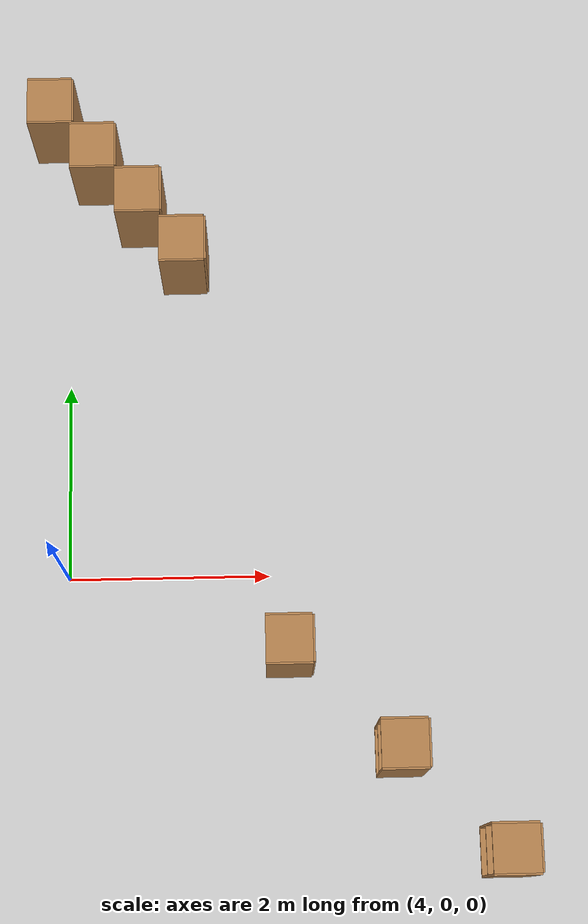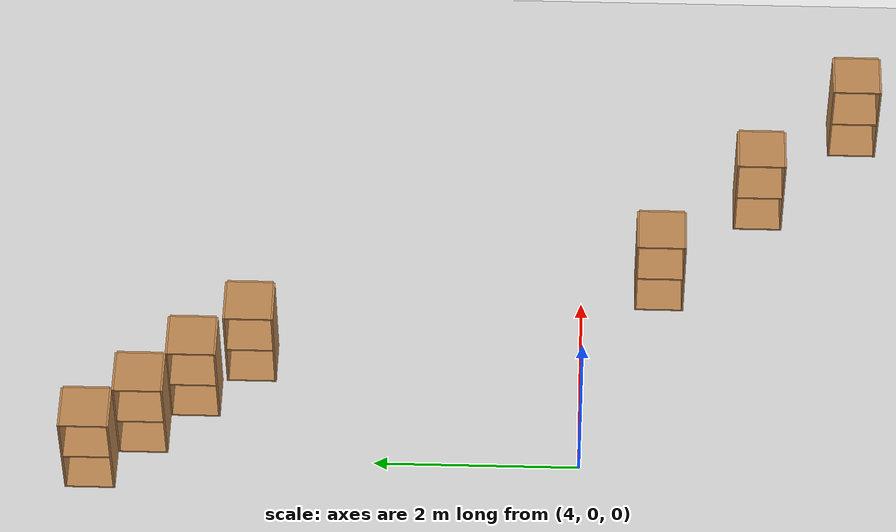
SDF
<sdf version="1.6">
 <world name="default">
  <model name="ground_plane">
   <static>1</static>
   <link name="link">
    <collision name="collision">
     <geometry><plane><normal>0 0 1</normal><size>100 100</size></plane></geometry>
     <surface><friction><ode><mu>100</mu><mu2>50</mu2></ode></friction></surface>
    </collision>
    <visual name="visual">
     <cast_shadows>0</cast_shadows>
     <geometry><plane><normal>0 0 1</normal><size>100 100</size></plane></geometry>
     <material>
      <script><uri>file://media/materials/scripts/gazebo.material</uri><name>Gazebo/Grey</name></script>
     </material>
    </visual>
   </link>
  </model>
  <model name="cabinet">
   <static>1</static>
   <link name="cabinet_bottom_plate">
    <inertial>
     <pose>0 0 -1 0 -0 0</pose>
     <inertia><ixx>2.05</ixx><ixy>0</ixy><ixz>0</ixz><iyy>2.05</iyy><iyz>0</iyz><izz>2.05</izz></inertia>
     <mass>25</mass>
    </inertial>
    <collision name="cabinet_bottom_plate_geom">
     <pose>0 0 0.01 0 -0 0</pose>
     <geometry><box><size>0.45 0.45 0.02</size></box></geometry>
    </collision>
    <visual name="cabinet_bottom_plate_geom_visual">
     <pose>0 0 0.01 0 -0 0</pose>
     <geometry><box><size>0.45 0.45 0.02</size></box></geometry>
     <material>
      <script><uri>file://media/materials/scripts/gazebo.material</uri><name>Gazebo/Wood</name></script>
     </material>
    </visual>
    <collision name="cabinet_bottom_plate_geom_cabinet_back_plate">
     <pose>0.235 0 0.51 0 -0 0</pose>
     <geometry><box><size>0.02 0.45 1.02</size></box></geometry>
    </collision>
    <visual name="cabinet_bottom_plate_geom_cabinet_back_plate_visual">
     <pose>0.235 0 0.51 0 -0 0</pose>
     <geometry><box><size>0.02 0.45 1.02</size></box></geometry>
     <material>
      <script><uri>file://media/materials/scripts/gazebo.material</uri><name>Gazebo/Wood</name></script>
     </material>
    </visual>
    <collision name="cabinet_bottom_plate_geom_cabinet_left_plate">
     <pose>0 0.235 0.51 0 -0 0</pose>
     <geometry><box><size>0.45 0.02 1.02</size></box></geometry>
    </collision>
    <visual name="cabinet_bottom_plate_geom_cabinet_left_plate_visual">
     <pose>0 0.235 0.51 0 -0 0</pose>
     <geometry><box><size>0.45 0.02 1.02</size></box></geometry>
     <material>
      <script><uri>file://media/materials/scripts/gazebo.material</uri><name>Gazebo/Wood</name></script>
     </material>
    </visual>
    <collision name="cabinet_bottom_plate_geom_cabinet_middle_plate">
     <pose>0 0 0.51 0 -0 0</pose>
     <geometry><box><size>0.45 0.45 0.02</size></box></geometry>
    </collision>
    <visual name="cabinet_bottom_plate_geom_cabinet_middle_plate_visual">
     <pose>0 0 0.51 0 -0 0</pose>
     <geometry><box><size>0.45 0.45 0.02</size></box></geometry>
     <material>
      <script><uri>file://media/materials/scripts/gazebo.material</uri><name>Gazebo/Wood</name></script>
     </material>
    </visual>
    <collision name="cabinet_bottom_plate_geom_cabinet_right_plate">
     <pose>0 -0.235 0.51 0 -0 0</pose>
     <geometry><box><size>0.45 0.02 1.02</size></box></geometry>
    </collision>
    <visual name="cabinet_bottom_plate_geom_cabinet_right_plate_visual">
     <pose>0 -0.235 0.51 0 -0 0</pose>
     <geometry><box><size>0.45 0.02 1.02</size></box></geometry>
     <material>
      <script><uri>file://media/materials/scripts/gazebo.material</uri><name>Gazebo/Wood</name></script>
     </material>
    </visual>
    <collision name="cabinet_bottom_plate_geom_cabinet_top_plate">
     <pose>0 0 1.01 0 -0 0</pose>
     <geometry><box><size>0.45 0.45 0.02</size></box></geometry>
    </collision>
    <visual name="cabinet_bottom_plate_geom_cabinet_top_plate_visual">
     <pose>0 0 1.01 0 -0 0</pose>
     <geometry><box><size>0.45 0.45 0.02</size></box></geometry>
     <material>
      <script><uri>file://media/materials/scripts/gazebo.material</uri><name>Gazebo/Wood</name></script>
     </material>
    </visual>
   </link>
   <pose>5.18774 3.25027 0 0 -0 0</pose>
  </model>
  <model name="cabinet_0">
   <static>1</static>
   <link name="cabinet_bottom_plate">
    <inertial>
     <pose>0 0 -1 0 -0 0</pose>
     <inertia><ixx>2.05</ixx><ixy>0</ixy><ixz>0</ixz><iyy>2.05</iyy><iyz>0</iyz><izz>2.05</izz></inertia>
     <mass>25</mass>
    </inertial>
    <collision name="cabinet_bottom_plate_geom">
     <pose>0 0 0.01 0 -0 0</pose>
     <geometry><box><size>0.45 0.45 0.02</size></box></geometry>
    </collision>
    <visual name="cabinet_bottom_plate_geom_visual">
     <pose>0 0 0.01 0 -0 0</pose>
     <geometry><box><size>0.45 0.45 0.02</size></box></geometry>
     <material>
      <script><uri>file://media/materials/scripts/gazebo.material</uri><name>Gazebo/Wood</name></script>
     </material>
    </visual>
    <collision name="cabinet_bottom_plate_geom_cabinet_back_plate">
     <pose>0.235 0 0.51 0 -0 0</pose>
     <geometry><box><size>0.02 0.45 1.02</size></box></geometry>
    </collision>
    <visual name="cabinet_bottom_plate_geom_cabinet_back_plate_visual">
     <pose>0.235 0 0.51 0 -0 0</pose>
     <geometry><box><size>0.02 0.45 1.02</size></box></geometry>
     <material>
      <script><uri>file://media/materials/scripts/gazebo.material</uri><name>Gazebo/Wood</name></script>
     </material>
    </visual>
    <collision name="cabinet_bottom_plate_geom_cabinet_left_plate">
     <pose>0 0.235 0.51 0 -0 0</pose>
     <geometry><box><size>0.45 0.02 1.02</size></box></geometry>
    </collision>
    <visual name="cabinet_bottom_plate_geom_cabinet_left_plate_visual">
     <pose>0 0.235 0.51 0 -0 0</pose>
     <geometry><box><size>0.45 0.02 1.02</size></box></geometry>
     <material>
      <script><uri>file://media/materials/scripts/gazebo.material</uri><name>Gazebo/Wood</name></script>
     </material>
    </visual>
    <collision name="cabinet_bottom_plate_geom_cabinet_middle_plate">
     <pose>0 0 0.51 0 -0 0</pose>
     <geometry><box><size>0.45 0.45 0.02</size></box></geometry>
    </collision>
    <visual name="cabinet_bottom_plate_geom_cabinet_middle_plate_visual">
     <pose>0 0 0.51 0 -0 0</pose>
     <geometry><box><size>0.45 0.45 0.02</size></box></geometry>
     <material>
      <script><uri>file://media/materials/scripts/gazebo.material</uri><name>Gazebo/Wood</name></script>
     </material>
    </visual>
    <collision name="cabinet_bottom_plate_geom_cabinet_right_plate">
     <pose>0 -0.235 0.51 0 -0 0</pose>
     <geometry><box><size>0.45 0.02 1.02</size></box></geometry>
    </collision>
    <visual name="cabinet_bottom_plate_geom_cabinet_right_plate_visual">
     <pose>0 -0.235 0.51 0 -0 0</pose>
     <geometry><box><size>0.45 0.02 1.02</size></box></geometry>
     <material>
      <script><uri>file://media/materials/scripts/gazebo.material</uri><name>Gazebo/Wood</name></script>
     </material>
    </visual>
    <collision name="cabinet_bottom_plate_geom_cabinet_top_plate">
     <pose>0 0 1.01 0 -0 0</pose>
     <geometry><box><size>0.45 0.45 0.02</size></box></geometry>
    </collision>
    <visual name="cabinet_bottom_plate_geom_cabinet_top_plate_visual">
     <pose>0 0 1.01 0 -0 0</pose>
     <geometry><box><size>0.45 0.45 0.02</size></box></geometry>
     <material>
      <script><uri>file://media/materials/scripts/gazebo.material</uri><name>Gazebo/Wood</name></script>
     </material>
    </visual>
   </link>
   <pose>4.74891 3.77928 0 0 -0 0</pose>
  </model>
  <model name="cabinet_1">
   <static>1</static>
   <link name="cabinet_bottom_plate">
    <inertial>
     <pose>0 0 -1 0 -0 0</pose>
     <inertia><ixx>2.05</ixx><ixy>0</ixy><ixz>0</ixz><iyy>2.05</iyy><iyz>0</iyz><izz>2.05</izz></inertia>
     <mass>25</mass>
    </inertial>
    <collision name="cabinet_bottom_plate_geom">
     <pose>0 0 0.01 0 -0 0</pose>
     <geometry><box><size>0.45 0.45 0.02</size></box></geometry>
    </collision>
    <visual name="cabinet_bottom_plate_geom_visual">
     <pose>0 0 0.01 0 -0 0</pose>
     <geometry><box><size>0.45 0.45 0.02</size></box></geometry>
     <material>
      <script><uri>file://media/materials/scripts/gazebo.material</uri><name>Gazebo/Wood</name></script>
     </material>
    </visual>
    <collision name="cabinet_bottom_plate_geom_cabinet_back_plate">
     <pose>0.235 0 0.51 0 -0 0</pose>
     <geometry><box><size>0.02 0.45 1.02</size></box></geometry>
    </collision>
    <visual name="cabinet_bottom_plate_geom_cabinet_back_plate_visual">
     <pose>0.235 0 0.51 0 -0 0</pose>
     <geometry><box><size>0.02 0.45 1.02</size></box></geometry>
     <material>
      <script><uri>file://media/materials/scripts/gazebo.material</uri><name>Gazebo/Wood</name></script>
     </material>
    </visual>
    <collision name="cabinet_bottom_plate_geom_cabinet_left_plate">
     <pose>0 0.235 0.51 0 -0 0</pose>
     <geometry><box><size>0.45 0.02 1.02</size></box></geometry>
    </collision>
    <visual name="cabinet_bottom_plate_geom_cabinet_left_plate_visual">
     <pose>0 0.235 0.51 0 -0 0</pose>
     <geometry><box><size>0.45 0.02 1.02</size></box></geometry>
     <material>
      <script><uri>file://media/materials/scripts/gazebo.material</uri><name>Gazebo/Wood</name></script>
     </material>
    </visual>
    <collision name="cabinet_bottom_plate_geom_cabinet_middle_plate">
     <pose>0 0 0.51 0 -0 0</pose>
     <geometry><box><size>0.45 0.45 0.02</size></box></geometry>
    </collision>
    <visual name="cabinet_bottom_plate_geom_cabinet_middle_plate_visual">
     <pose>0 0 0.51 0 -0 0</pose>
     <geometry><box><size>0.45 0.45 0.02</size></box></geometry>
     <material>
      <script><uri>file://media/materials/scripts/gazebo.material</uri><name>Gazebo/Wood</name></script>
     </material>
    </visual>
    <collision name="cabinet_bottom_plate_geom_cabinet_right_plate">
     <pose>0 -0.235 0.51 0 -0 0</pose>
     <geometry><box><size>0.45 0.02 1.02</size></box></geometry>
    </collision>
    <visual name="cabinet_bottom_plate_geom_cabinet_right_plate_visual">
     <pose>0 -0.235 0.51 0 -0 0</pose>
     <geometry><box><size>0.45 0.02 1.02</size></box></geometry>
     <material>
      <script><uri>file://media/materials/scripts/gazebo.material</uri><name>Gazebo/Wood</name></script>
     </material>
    </visual>
    <collision name="cabinet_bottom_plate_geom_cabinet_top_plate">
     <pose>0 0 1.01 0 -0 0</pose>
     <geometry><box><size>0.45 0.45 0.02</size></box></geometry>
    </collision>
    <visual name="cabinet_bottom_plate_geom_cabinet_top_plate_visual">
     <pose>0 0 1.01 0 -0 0</pose>
     <geometry><box><size>0.45 0.45 0.02</size></box></geometry>
     <material>
      <script><uri>file://media/materials/scripts/gazebo.material</uri><name>Gazebo/Wood</name></script>
     </material>
    </visual>
   </link>
   <pose>4.2975 4.26155 0 0 -0 0</pose>
  </model>
  <model name="cabinet_2">
   <static>1</static>
   <link name="cabinet_bottom_plate">
    <inertial>
     <pose>0 0 -1 0 -0 0</pose>
     <inertia><ixx>2.05</ixx><ixy>0</ixy><ixz>0</ixz><iyy>2.05</iyy><iyz>0</iyz><izz>2.05</izz></inertia>
     <mass>25</mass>
    </inertial>
    <collision name="cabinet_bottom_plate_geom">
     <pose>0 0 0.01 0 -0 0</pose>
     <geometry><box><size>0.45 0.45 0.02</size></box></geometry>
    </collision>
    <visual name="cabinet_bottom_plate_geom_visual">
     <pose>0 0 0.01 0 -0 0</pose>
     <geometry><box><size>0.45 0.45 0.02</size></box></geometry>
     <material>
      <script><uri>file://media/materials/scripts/gazebo.material</uri><name>Gazebo/Wood</name></script>
     </material>
    </visual>
    <collision name="cabinet_bottom_plate_geom_cabinet_back_plate">
     <pose>0.235 0 0.51 0 -0 0</pose>
     <geometry><box><size>0.02 0.45 1.02</size></box></geometry>
    </collision>
    <visual name="cabinet_bottom_plate_geom_cabinet_back_plate_visual">
     <pose>0.235 0 0.51 0 -0 0</pose>
     <geometry><box><size>0.02 0.45 1.02</size></box></geometry>
     <material>
      <script><uri>file://media/materials/scripts/gazebo.material</uri><name>Gazebo/Wood</name></script>
     </material>
    </visual>
    <collision name="cabinet_bottom_plate_geom_cabinet_left_plate">
     <pose>0 0.235 0.51 0 -0 0</pose>
     <geometry><box><size>0.45 0.02 1.02</size></box></geometry>
    </collision>
    <visual name="cabinet_bottom_plate_geom_cabinet_left_plate_visual">
     <pose>0 0.235 0.51 0 -0 0</pose>
     <geometry><box><size>0.45 0.02 1.02</size></box></geometry>
     <material>
      <script><uri>file://media/materials/scripts/gazebo.material</uri><name>Gazebo/Wood</name></script>
     </material>
    </visual>
    <collision name="cabinet_bottom_plate_geom_cabinet_middle_plate">
     <pose>0 0 0.51 0 -0 0</pose>
     <geometry><box><size>0.45 0.45 0.02</size></box></geometry>
    </collision>
    <visual name="cabinet_bottom_plate_geom_cabinet_middle_plate_visual">
     <pose>0 0 0.51 0 -0 0</pose>
     <geometry><box><size>0.45 0.45 0.02</size></box></geometry>
     <material>
      <script><uri>file://media/materials/scripts/gazebo.material</uri><name>Gazebo/Wood</name></script>
     </material>
    </visual>
    <collision name="cabinet_bottom_plate_geom_cabinet_right_plate">
     <pose>0 -0.235 0.51 0 -0 0</pose>
     <geometry><box><size>0.45 0.02 1.02</size></box></geometry>
    </collision>
    <visual name="cabinet_bottom_plate_geom_cabinet_right_plate_visual">
     <pose>0 -0.235 0.51 0 -0 0</pose>
     <geometry><box><size>0.45 0.02 1.02</size></box></geometry>
     <material>
      <script><uri>file://media/materials/scripts/gazebo.material</uri><name>Gazebo/Wood</name></script>
     </material>
    </visual>
    <collision name="cabinet_bottom_plate_geom_cabinet_top_plate">
     <pose>0 0 1.01 0 -0 0</pose>
     <geometry><box><size>0.45 0.45 0.02</size></box></geometry>
    </collision>
    <visual name="cabinet_bottom_plate_geom_cabinet_top_plate_visual">
     <pose>0 0 1.01 0 -0 0</pose>
     <geometry><box><size>0.45 0.45 0.02</size></box></geometry>
     <material>
      <script><uri>file://media/materials/scripts/gazebo.material</uri><name>Gazebo/Wood</name></script>
     </material>
    </visual>
   </link>
   <pose>3.8673 4.74815 0 0 -0 0</pose>
  </model>
  <model name="cabinet_6">
   <static>1</static>
   <link name="cabinet_bottom_plate">
    <inertial>
     <pose>0 0 -1 0 -0 0</pose>
     <inertia><ixx>2.05</ixx><ixy>0</ixy><ixz>0</ixz><iyy>2.05</iyy><iyz>0</iyz><izz>2.05</izz></inertia>
     <mass>25</mass>
    </inertial>
    <collision name="cabinet_bottom_plate_geom">
     <pose>0 0 0.01 0 -0 0</pose>
     <geometry><box><size>0.45 0.45 0.02</size></box></geometry>
    </collision>
    <visual name="cabinet_bottom_plate_geom_visual">
     <pose>0 0 0.01 0 -0 0</pose>
     <geometry><box><size>0.45 0.45 0.02</size></box></geometry>
     <material>
      <script><uri>file://media/materials/scripts/gazebo.material</uri><name>Gazebo/Wood</name></script>
     </material>
    </visual>
    <collision name="cabinet_bottom_plate_geom_cabinet_back_plate">
     <pose>0.235 0 0.51 0 -0 0</pose>
     <geometry><box><size>0.02 0.45 1.02</size></box></geometry>
    </collision>
    <visual name="cabinet_bottom_plate_geom_cabinet_back_plate_visual">
     <pose>0.235 0 0.51 0 -0 0</pose>
     <geometry><box><size>0.02 0.45 1.02</size></box></geometry>
     <material>
      <script><uri>file://media/materials/scripts/gazebo.material</uri><name>Gazebo/Wood</name></script>
     </material>
    </visual>
    <collision name="cabinet_bottom_plate_geom_cabinet_left_plate">
     <pose>0 0.235 0.51 0 -0 0</pose>
     <geometry><box><size>0.45 0.02 1.02</size></box></geometry>
    </collision>
    <visual name="cabinet_bottom_plate_geom_cabinet_left_plate_visual">
     <pose>0 0.235 0.51 0 -0 0</pose>
     <geometry><box><size>0.45 0.02 1.02</size></box></geometry>
     <material>
      <script><uri>file://media/materials/scripts/gazebo.material</uri><name>Gazebo/Wood</name></script>
     </material>
    </visual>
    <collision name="cabinet_bottom_plate_geom_cabinet_middle_plate">
     <pose>0 0 0.51 0 -0 0</pose>
     <geometry><box><size>0.45 0.45 0.02</size></box></geometry>
    </collision>
    <visual name="cabinet_bottom_plate_geom_cabinet_middle_plate_visual">
     <pose>0 0 0.51 0 -0 0</pose>
     <geometry><box><size>0.45 0.45 0.02</size></box></geometry>
     <material>
      <script><uri>file://media/materials/scripts/gazebo.material</uri><name>Gazebo/Wood</name></script>
     </material>
    </visual>
    <collision name="cabinet_bottom_plate_geom_cabinet_right_plate">
     <pose>0 -0.235 0.51 0 -0 0</pose>
     <geometry><box><size>0.45 0.02 1.02</size></box></geometry>
    </collision>
    <visual name="cabinet_bottom_plate_geom_cabinet_right_plate_visual">
     <pose>0 -0.235 0.51 0 -0 0</pose>
     <geometry><box><size>0.45 0.02 1.02</size></box></geometry>
     <material>
      <script><uri>file://media/materials/scripts/gazebo.material</uri><name>Gazebo/Wood</name></script>
     </material>
    </visual>
    <collision name="cabinet_bottom_plate_geom_cabinet_top_plate">
     <pose>0 0 1.01 0 -0 0</pose>
     <geometry><box><size>0.45 0.45 0.02</size></box></geometry>
    </collision>
    <visual name="cabinet_bottom_plate_geom_cabinet_top_plate_visual">
     <pose>0 0 1.01 0 -0 0</pose>
     <geometry><box><size>0.45 0.45 0.02</size></box></geometry>
     <material>
      <script><uri>file://media/materials/scripts/gazebo.material</uri><name>Gazebo/Wood</name></script>
     </material>
    </visual>
   </link>
   <pose>6.1738 -0.77542 0 0 -0 0</pose>
  </model>
  <model name="cabinet_7">
   <static>1</static>
   <link name="cabinet_bottom_plate">
    <inertial>
     <pose>0 0 -1 0 -0 0</pose>
     <inertia><ixx>2.05</ixx><ixy>0</ixy><ixz>0</ixz><iyy>2.05</iyy><iyz>0</iyz><izz>2.05</izz></inertia>
     <mass>25</mass>
    </inertial>
    <collision name="cabinet_bottom_plate_geom">
     <pose>0 0 0.01 0 -0 0</pose>
     <geometry><box><size>0.45 0.45 0.02</size></box></geometry>
    </collision>
    <visual name="cabinet_bottom_plate_geom_visual">
     <pose>0 0 0.01 0 -0 0</pose>
     <geometry><box><size>0.45 0.45 0.02</size></box></geometry>
     <material>
      <script><uri>file://media/materials/scripts/gazebo.material</uri><name>Gazebo/Wood</name></script>
     </material>
    </visual>
    <collision name="cabinet_bottom_plate_geom_cabinet_back_plate">
     <pose>0.235 0 0.51 0 -0 0</pose>
     <geometry><box><size>0.02 0.45 1.02</size></box></geometry>
    </collision>
    <visual name="cabinet_bottom_plate_geom_cabinet_back_plate_visual">
     <pose>0.235 0 0.51 0 -0 0</pose>
     <geometry><box><size>0.02 0.45 1.02</size></box></geometry>
     <material>
      <script><uri>file://media/materials/scripts/gazebo.material</uri><name>Gazebo/Wood</name></script>
     </material>
    </visual>
    <collision name="cabinet_bottom_plate_geom_cabinet_left_plate">
     <pose>0 0.235 0.51 0 -0 0</pose>
     <geometry><box><size>0.45 0.02 1.02</size></box></geometry>
    </collision>
    <visual name="cabinet_bottom_plate_geom_cabinet_left_plate_visual">
     <pose>0 0.235 0.51 0 -0 0</pose>
     <geometry><box><size>0.45 0.02 1.02</size></box></geometry>
     <material>
      <script><uri>file://media/materials/scripts/gazebo.material</uri><name>Gazebo/Wood</name></script>
     </material>
    </visual>
    <collision name="cabinet_bottom_plate_geom_cabinet_middle_plate">
     <pose>0 0 0.51 0 -0 0</pose>
     <geometry><box><size>0.45 0.45 0.02</size></box></geometry>
    </collision>
    <visual name="cabinet_bottom_plate_geom_cabinet_middle_plate_visual">
     <pose>0 0 0.51 0 -0 0</pose>
     <geometry><box><size>0.45 0.45 0.02</size></box></geometry>
     <material>
      <script><uri>file://media/materials/scripts/gazebo.material</uri><name>Gazebo/Wood</name></script>
     </material>
    </visual>
    <collision name="cabinet_bottom_plate_geom_cabinet_right_plate">
     <pose>0 -0.235 0.51 0 -0 0</pose>
     <geometry><box><size>0.45 0.02 1.02</size></box></geometry>
    </collision>
    <visual name="cabinet_bottom_plate_geom_cabinet_right_plate_visual">
     <pose>0 -0.235 0.51 0 -0 0</pose>
     <geometry><box><size>0.45 0.02 1.02</size></box></geometry>
     <material>
      <script><uri>file://media/materials/scripts/gazebo.material</uri><name>Gazebo/Wood</name></script>
     </material>
    </visual>
    <collision name="cabinet_bottom_plate_geom_cabinet_top_plate">
     <pose>0 0 1.01 0 -0 0</pose>
     <geometry><box><size>0.45 0.45 0.02</size></box></geometry>
    </collision>
    <visual name="cabinet_bottom_plate_geom_cabinet_top_plate_visual">
     <pose>0 0 1.01 0 -0 0</pose>
     <geometry><box><size>0.45 0.45 0.02</size></box></geometry>
     <material>
      <script><uri>file://media/materials/scripts/gazebo.material</uri><name>Gazebo/Wood</name></script>
     </material>
    </visual>
   </link>
   <pose>7.22993 -1.77544 0 0 -0 0</pose>
  </model>
  <model name="cabinet_8">
   <static>1</static>
   <link name="cabinet_bottom_plate">
    <inertial>
     <pose>0 0 -1 0 -0 0</pose>
     <inertia><ixx>2.05</ixx><ixy>0</ixy><ixz>0</ixz><iyy>2.05</iyy><iyz>0</iyz><izz>2.05</izz></inertia>
     <mass>25</mass>
    </inertial>
    <collision name="cabinet_bottom_plate_geom">
     <pose>0 0 0.01 0 -0 0</pose>
     <geometry><box><size>0.45 0.45 0.02</size></box></geometry>
    </collision>
    <visual name="cabinet_bottom_plate_geom_visual">
     <pose>0 0 0.01 0 -0 0</pose>
     <geometry><box><size>0.45 0.45 0.02</size></box></geometry>
     <material>
      <script><uri>file://media/materials/scripts/gazebo.material</uri><name>Gazebo/Wood</name></script>
     </material>
    </visual>
    <collision name="cabinet_bottom_plate_geom_cabinet_back_plate">
     <pose>0.235 0 0.51 0 -0 0</pose>
     <geometry><box><size>0.02 0.45 1.02</size></box></geometry>
    </collision>
    <visual name="cabinet_bottom_plate_geom_cabinet_back_plate_visual">
     <pose>0.235 0 0.51 0 -0 0</pose>
     <geometry><box><size>0.02 0.45 1.02</size></box></geometry>
     <material>
      <script><uri>file://media/materials/scripts/gazebo.material</uri><name>Gazebo/Wood</name></script>
     </material>
    </visual>
    <collision name="cabinet_bottom_plate_geom_cabinet_left_plate">
     <pose>0 0.235 0.51 0 -0 0</pose>
     <geometry><box><size>0.45 0.02 1.02</size></box></geometry>
    </collision>
    <visual name="cabinet_bottom_plate_geom_cabinet_left_plate_visual">
     <pose>0 0.235 0.51 0 -0 0</pose>
     <geometry><box><size>0.45 0.02 1.02</size></box></geometry>
     <material>
      <script><uri>file://media/materials/scripts/gazebo.material</uri><name>Gazebo/Wood</name></script>
     </material>
    </visual>
    <collision name="cabinet_bottom_plate_geom_cabinet_middle_plate">
     <pose>0 0 0.51 0 -0 0</pose>
     <geometry><box><size>0.45 0.45 0.02</size></box></geometry>
    </collision>
    <visual name="cabinet_bottom_plate_geom_cabinet_middle_plate_visual">
     <pose>0 0 0.51 0 -0 0</pose>
     <geometry><box><size>0.45 0.45 0.02</size></box></geometry>
     <material>
      <script><uri>file://media/materials/scripts/gazebo.material</uri><name>Gazebo/Wood</name></script>
     </material>
    </visual>
    <collision name="cabinet_bottom_plate_geom_cabinet_right_plate">
     <pose>0 -0.235 0.51 0 -0 0</pose>
     <geometry><box><size>0.45 0.02 1.02</size></box></geometry>
    </collision>
    <visual name="cabinet_bottom_plate_geom_cabinet_right_plate_visual">
     <pose>0 -0.235 0.51 0 -0 0</pose>
     <geometry><box><size>0.45 0.02 1.02</size></box></geometry>
     <material>
      <script><uri>file://media/materials/scripts/gazebo.material</uri><name>Gazebo/Wood</name></script>
     </material>
    </visual>
    <collision name="cabinet_bottom_plate_geom_cabinet_top_plate">
     <pose>0 0 1.01 0 -0 0</pose>
     <geometry><box><size>0.45 0.45 0.02</size></box></geometry>
    </collision>
    <visual name="cabinet_bottom_plate_geom_cabinet_top_plate_visual">
     <pose>0 0 1.01 0 -0 0</pose>
     <geometry><box><size>0.45 0.45 0.02</size></box></geometry>
     <material>
      <script><uri>file://media/materials/scripts/gazebo.material</uri><name>Gazebo/Wood</name></script>
     </material>
    </visual>
   </link>
   <pose>8.21954 -2.75427 0 0 -0 0</pose>
  </model>
 </world>
</sdf>
